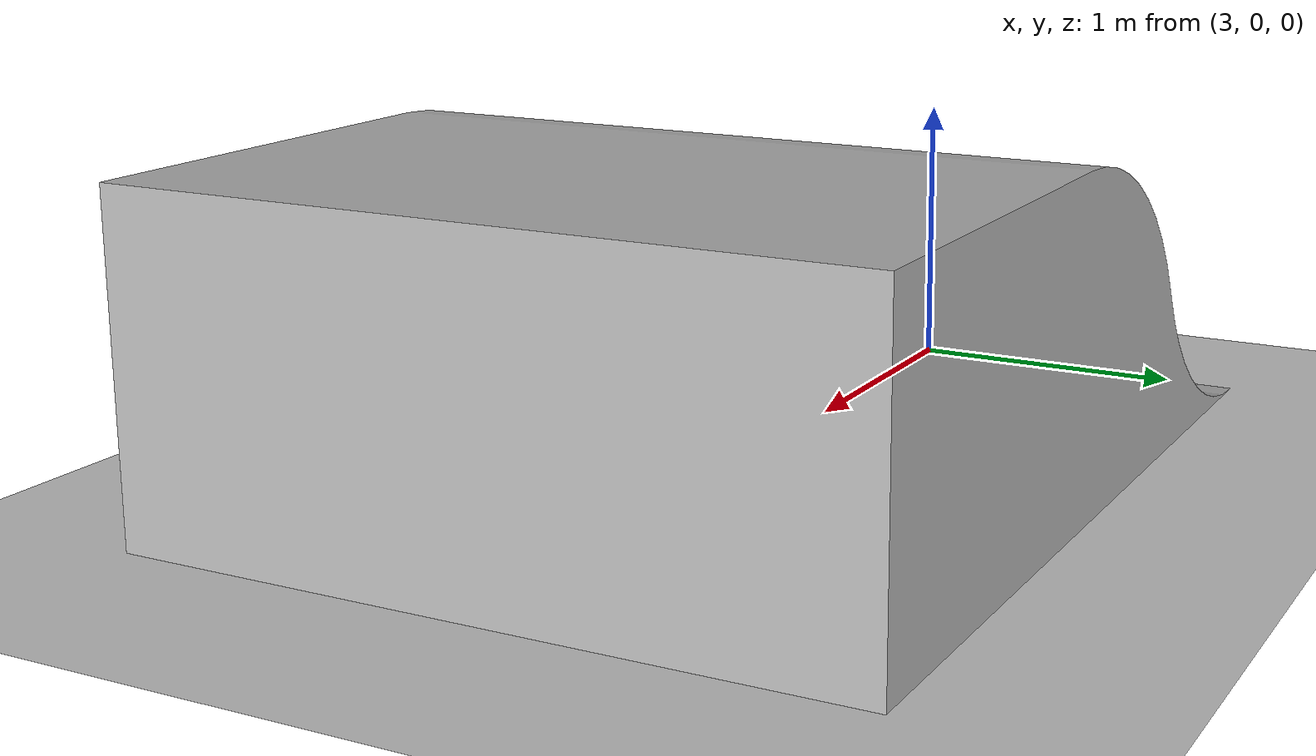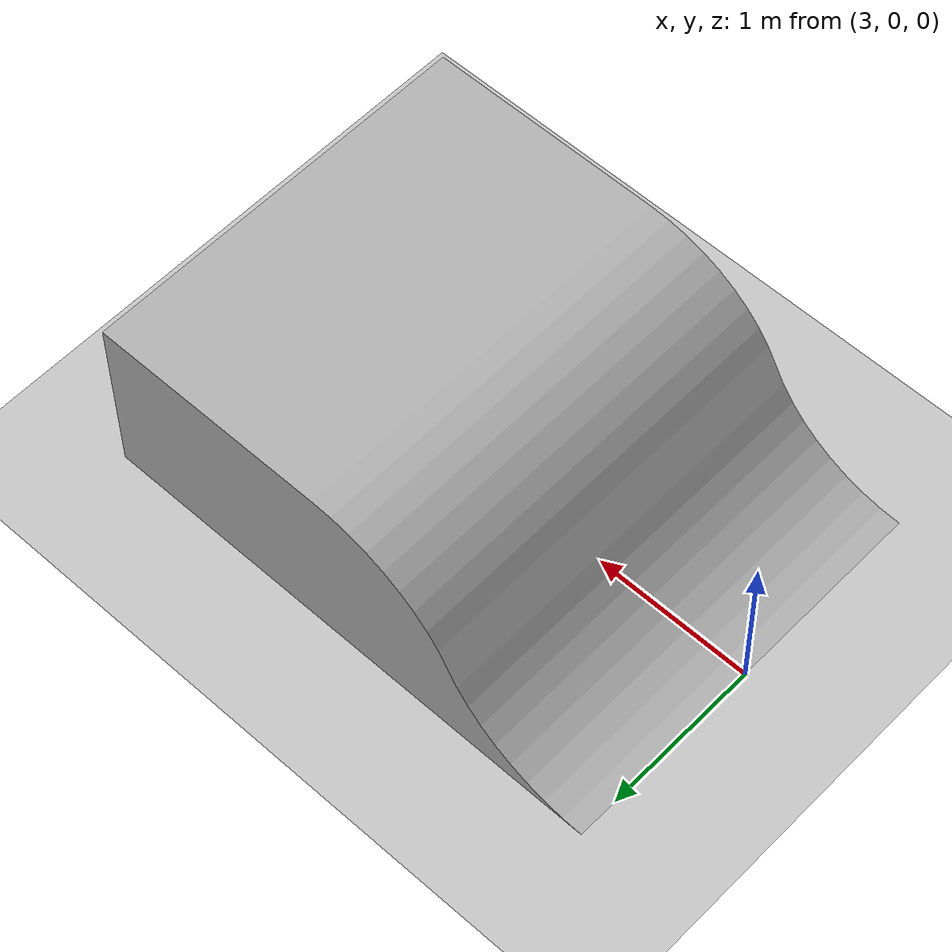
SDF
<?xml version="1.0" ?>
<sdf version="1.5">
    <world name="default">

        <physics type="ode">
        <max_step_size>0.0002</max_step_size>
        <real_time_factor>1</real_time_factor>
        <real_time_update_rate>2500</real_time_update_rate>
        <gravity>0 0 -9.81</gravity>
            <ode>
                <solver>
                <type>quick</type>
                <iters>80</iters>
                <sor>1.3</sor>
                </solver>
                <constraints>
                <cfm>0.0</cfm>
                <erp>0.2</erp>
                <contact_max_correcting_vel>0.1</contact_max_correcting_vel>
                <contact_surface_layer>0.0001</contact_surface_layer>
                </constraints>
            </ode>
        </physics>

        <scene>
        <sky>
            <clouds>
                <speed>12</speed>
            </clouds>
        </sky>
        </scene>
        <!-- A global light source -->
        <include>
            <uri>model://sun</uri>
        </include>
        <!-- A ground plane -->
        <include>
            <uri>model://ground_plane</uri>
        </include>
        <!-- environment blocks, obstacles or stairs -->
        <model name="static_environment">
        <static>true</static>
            <link name="slope_stl">
                <pose>3 -1.25 0 0 0 0</pose>
                <collision name="slope_stl_collision">
                    <geometry>
                        <mesh>
                            <uri>file:///home/zixin/Dev/unitree_ws/src/unitree_ros/unitree_gazebo/worlds/slope.STL</uri>
                            <scale>0.0005 0.0005 0.0005</scale>
                        </mesh>
                    </geometry>
                    <surface>
                        <friction>
                            <ode>
                                <mu>Inf</mu>
                                <mu2>Inf</mu2>
                            </ode>
                        </friction>
                    </surface>
                </collision>
                <visual name="slope_stl_visual">
                    <geometry>
                        <mesh>
                            <uri>file:///home/zixin/Dev/unitree_ws/src/unitree_ros/unitree_gazebo/worlds/slope.STL</uri>
                            <scale>0.0005 0.0005 0.0005</scale>
                        </mesh>
                    </geometry>
                </visual>
            </link>
        </model>
    </world>
</sdf>
